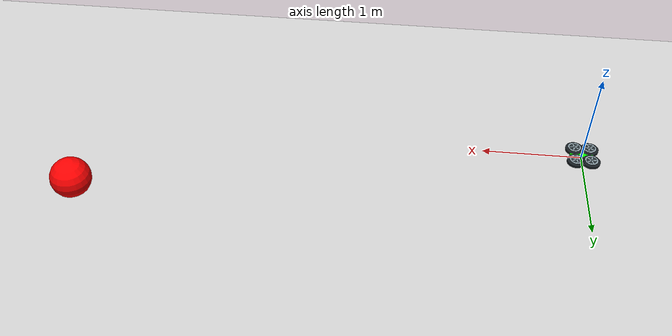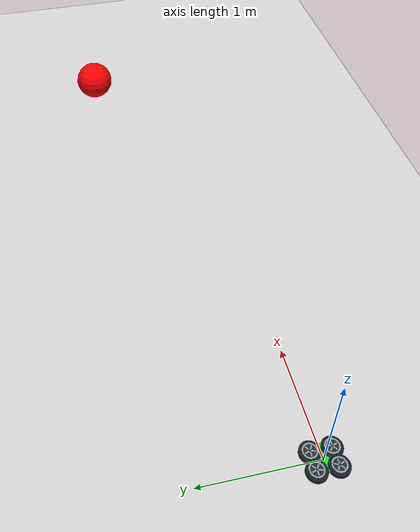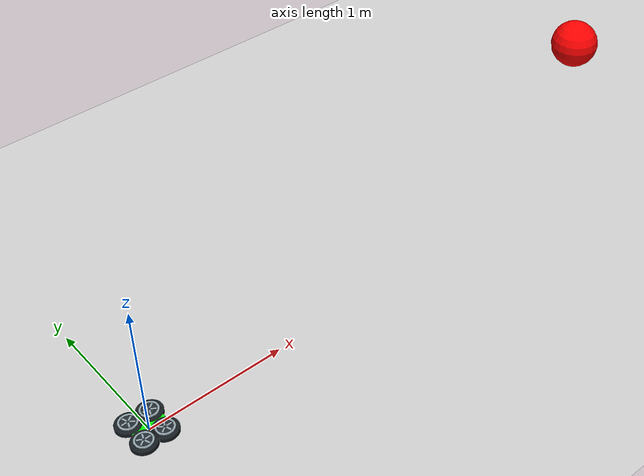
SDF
<?xml version="1.0" ?>
<sdf version="1.8">
  <world name="jetracer_world">
    <physics name="default_physics" type="ode">
      <max_step_size>0.001</max_step_size>
      <real_time_factor>1.0</real_time_factor>
      <real_time_update_rate>1000</real_time_update_rate>
      <solver>
        <type>quick</type>
        <iters>500</iters>
        <precon_iters>50</precon_iters>
        <sor>1.3</sor>
        <use_dynamic_moi_rescaling>true</use_dynamic_moi_rescaling>
      </solver>
      <constraints>
        <cfm>1e-5</cfm>
        <erp>0.8</erp>
      </constraints>
    </physics>
    <plugin
        filename="libignition-gazebo-physics-system.so"
        name="ignition::gazebo::systems::Physics">
        <calculate_inertial>true</calculate_inertial>
    </plugin>
    <plugin
        filename="libignition-gazebo-user-commands-system.so"
        name="ignition::gazebo::systems::UserCommands">
    </plugin>
    <plugin
        filename="libignition-gazebo-scene-broadcaster-system.so"
        name="ignition::gazebo::systems::SceneBroadcaster">
    </plugin>

    <light type="directional" name="sun">
      <cast_shadows>true</cast_shadows>
      <pose>0 0 10 0 0 0</pose>
      <diffuse>0.8 0.8 0.8 1</diffuse>
      <specular>0.2 0.2 0.2 1</specular>
      <attenuation>
        <range>1000</range>
        <constant>0.9</constant>
        <linear>0.01</linear>
        <quadratic>0.001</quadratic>
      </attenuation>
      <direction>-0.5 0.1 -0.9</direction>
    </light>

    <model name="ground_plane">
      <static>true</static>
      <link name="link">
        <collision name="collision">
          <geometry>
            <plane>
              <normal>0 0 1</normal>
            </plane>
          </geometry>
          <surface>
            <friction>
              <ode>
                <mu>10.0</mu>
                <mu2>5.0</mu2>
              </ode>
            </friction>
            <bounce>
              <restitution_coefficient>0.0</restitution_coefficient>
            </bounce>
          </surface>
        </collision>
        <visual name="visual">
          <geometry>
            <plane>
              <normal>0 0 1</normal>
              <size>30 30</size>
            </plane>
          </geometry>
          <material>
            <ambient>0.8 0.8 0.8 1</ambient>
            <diffuse>0.8 0.8 0.8 1</diffuse>
            <specular>0.8 0.8 0.8 1</specular>
          </material>
        </visual>
      </link>
    </model>

    <!-- Sensors -->
    <plugin
        filename="libignition-gazebo-contact-system.so"
        name="ignition::gazebo::systems::Contact">
    </plugin>

    <plugin
        filename="libignition-gazebo-imu-system.so"
        name="ignition::gazebo::systems::Imu">
    </plugin>

    <plugin filename="libignition-gazebo-sensors-system.so"
        name="ignition::gazebo::systems::Sensors">
      <render_engine>ogre2</render_engine>
    </plugin>

    <model name="target_marker">
      <pose>5 1 0.2 0 0 0</pose>
      <link name="link">
          <visual name="visual">
              <geometry>
                  <sphere>
                      <radius>0.2</radius>
                  </sphere>
              </geometry>
              <material>
                  <ambient>1 0 0 1</ambient>
                  <diffuse>1 0 0 1</diffuse>
              </material>
          </visual>
          <collision name="collision">
              <geometry>
                  <sphere>
                      <radius>0.2</radius>
                  </sphere>
              </geometry>
          </collision>
      </link>
    </model>

    <model name="jetracer">
      <pose relative_to="world">0 0 0 0 0 0</pose>
      <self_collide>false</self_collide>
      <static>false</static>

      <frame name="lidar_frame" attached_to="jetracer/Base">
        <pose>0 0 0.08 0 0 0</pose>
      </frame>

      <link name='jetracer/Base'>
        <pose>0 0 0.033 0 0 0</pose>
        <sensor name="imu_sensor" type="imu">
          <always_on>1</always_on>
          <update_rate>1</update_rate>
          <visualize>true</visualize>
          <topic>imu</topic>
        </sensor>

        <sensor name='gpu_lidar' type='gpu_lidar'>
          <pose relative_to='lidar_frame'>0 0 0 0 0 0</pose>
          <topic>lidar</topic>
          <update_rate>10</update_rate>
          <ray>
            <scan>
              <horizontal>
                <samples>120</samples>
                <resolution>1</resolution>
                <min_angle>-1.0472</min_angle>
                <max_angle>1.0472</max_angle>
              </horizontal>
              <vertical>
                <samples>1</samples>
                <resolution>0.01</resolution>
                <min_angle>0</min_angle>
                <max_angle>0</max_angle>
              </vertical>
            </scan>
            <range>
              <min>0.08</min>
              <max>1.5</max>
              <resolution>0.01</resolution>
            </range>
          </ray>
          <alwaysOn>1</alwaysOn>
          <visualize>true</visualize>
        </sensor>

        <inertial>
          <mass>1.329</mass>
        </inertial>
        <collision name='collision'>
          <geometry>
            <box>
              <size>0.23 0.122 0.02</size>
            </box>
          </geometry>
        </collision>
        <visual name='visual'>
          <geometry>
            <box>
              <size>0.23 0.122 0.02</size>
            </box>
          </geometry>
          <material>
            <ambient>0.0 1.0 0.0 1</ambient>
            <diffuse>0.0 1.0 0.0 1</diffuse>
            <specular>0.0 1.0 0.0 1</specular>
          </material>
        </visual>
      </link>
      <link name="jetracer/FrontRightWheel">
        <pose relative_to="jetracer/FrontRightWheelJoint">0 0 0 0 0 0</pose>
        <inertial>
          <mass>.05</mass>
          <inertia>
            <ixx>0.00003331</ixx>
            <ixy>0</ixy>
            <ixz>0</ixz>
            <iyy>0.0000204</iyy>
            <iyz>0</iyz>
            <izz>0.0000204</izz>
          </inertia>
        </inertial>
        <gravity>true</gravity>
        <velocity_decay/>
        <visual name="jetracer/FrontRightWheelVisual">
          <pose>0 0 0 0 0 0</pose>
          <geometry>
            <mesh>
              <uri>meshes/Wheel.dae</uri>
              <scale>0.9041 0.866 0.9041</scale>
            </mesh>
          </geometry>
        </visual>
        <collision name="jetracer/FrontRightWheelCollision">
          <pose>0 .015 0 -1.5707 0 0</pose>
          <geometry>
            <cylinder>
              <length>0.026</length>
              <radius>0.033</radius>
            </cylinder>
          </geometry>
          <surface>
            <friction>
              <ode>
                <mu>0.5</mu>
                <mu2>1.0</mu2>
                <fdir1>0 0 1</fdir1>
              </ode>
            </friction>
          </surface>
        </collision>
      </link>
      <link name="jetracer/FrontRightWheelSteering">
        <pose relative_to="jetracer/FrontRightWheelSteeringJoint">0 0 0 0 0 0</pose>
        <inertial>
          <mass>0.005</mass>
          <inertia>
            <ixx>0.0000018</ixx>
            <iyy>0.0000018</iyy>
            <izz>0.0000018</izz>
          </inertia>
        </inertial>
      </link>
      <link name="jetracer/FrontLeftWheel">
        <pose relative_to="jetracer/FrontLeftWheelJoint">0 0 0 0 0 0</pose>
        <inertial>
          <mass>.05</mass>
          <inertia>
            <ixx>0.00003331</ixx>
            <ixy>0</ixy>
            <ixz>0</ixz>
            <iyy>0.0000204</iyy>
            <iyz>0</iyz>
            <izz>0.0000204</izz>
          </inertia>
        </inertial>
        <gravity>true</gravity>
        <velocity_decay/>
        <visual name="jetracer/FrontLeftWheelVisual">
          <pose>0 0 0 0 0 3.14159</pose>
          <geometry>
            <mesh>
              <uri>meshes/Wheel.dae</uri>
              <scale>0.9041 0.866 0.9041</scale>
            </mesh>
          </geometry>
        </visual>
        <collision name="jetracer/FrontLeftWheelCollision">
          <pose>0 -.015 0 -1.5707 0 0</pose>
          <geometry>
            <cylinder>
              <length>0.026</length>
              <radius>0.033</radius>
            </cylinder>
          </geometry>
          <surface>
            <friction>
              <ode>
                <mu>0.5</mu>
                <mu2>1.0</mu2>
                <fdir1>0 0 1</fdir1>
              </ode>
            </friction>
          </surface>
        </collision>
      </link>
      <link name="jetracer/FrontLeftWheelSteering">
        <pose relative_to="jetracer/FrontLeftWheelSteeringJoint">0 0 0 0 0 0</pose>
        <inertial>
          <mass>0.005</mass>
          <inertia>
            <ixx>0.0000018</ixx>
            <iyy>0.0000018</iyy>
            <izz>0.0000018</izz>
          </inertia>
        </inertial>
      </link>
      <link name="jetracer/RearRightWheel">
        <pose relative_to="jetracer/RearRightWheelJoint">0 0 0 0 0 0</pose>
        <inertial>
          <mass>.05</mass>
          <inertia>
            <ixx>0.00003331</ixx>
            <ixy>0</ixy>
            <ixz>0</ixz>
            <iyy>0.0000204</iyy>
            <iyz>0</iyz>
            <izz>0.0000204</izz>
          </inertia>
        </inertial>
        <gravity>true</gravity>
        <velocity_decay/>
        <visual name="jetracer/RearRightWheelVisual">
          <pose>0 0 0 0 0 0</pose>
          <geometry>
            <mesh>
              <uri>meshes/Wheel.dae</uri>
              <scale>0.9041 0.866 0.9041</scale>
            </mesh>
          </geometry>
        </visual>
        <collision name="jetracer/RearRightWheelCollision">
          <pose>0 .015 0 -1.5707 0 0</pose>
          <geometry>
            <cylinder>
              <length>0.026</length>
              <radius>0.033</radius>
            </cylinder>
          </geometry>
          <surface>
            <friction>
              <ode>
                <mu>0.5</mu>
                <mu2>1.0</mu2>
                <fdir1>0 0 1</fdir1>
              </ode>
            </friction>
          </surface>
        </collision>
      </link>
      <link name="jetracer/RearLeftWheel">
        <pose relative_to="jetracer/RearLeftWheelJoint">0 0 0 0 0 0</pose>
        <inertial>
          <mass>.05</mass>
          <inertia>
            <ixx>0.00003331</ixx>
            <ixy>0</ixy>
            <ixz>0</ixz>
            <iyy>0.0000204</iyy>
            <iyz>0</iyz>
            <izz>0.0000204</izz>
          </inertia>
        </inertial>
        <gravity>true</gravity>
        <velocity_decay/>
        <visual name="jetracer/RearLeftWheelVisual">
          <pose>0 0 0 0 0 3.14159</pose>
          <geometry>
            <mesh>
              <uri>meshes/Wheel.dae</uri>
              <scale>0.9041 0.866 0.9041</scale>
            </mesh>
          </geometry>
        </visual>
        <collision name="jetracer/RearLeftWheelCollision">
          <pose>0 -.015 0 -1.5707 0 0</pose>
          <geometry>
            <cylinder>
              <length>0.026</length>
              <radius>0.033</radius>
            </cylinder>
          </geometry>
          <surface>
            <friction>
              <ode>
                <mu>0.5</mu>
                <mu2>1.0</mu2>
                <fdir1>0 0 1</fdir1>
              </ode>
            </friction>
          </surface>
        </collision>
      </link>
      <joint name="jetracer/FrontRightWheelSteeringJoint" type="revolute">
        <parent>jetracer/Base</parent>
        <child>jetracer/FrontRightWheelSteering</child>
        <pose relative_to="jetracer/Base">.064 -0.089 0 0 0 0</pose>
        <axis>
          <xyz>0 0 1</xyz>
          <limit>
            <lower>-0.6</lower>
            <upper>0.6</upper>
            <velocity>1.0</velocity>
            <effort>25</effort>
          </limit>
          <use_parent_model_frame>1</use_parent_model_frame>
        </axis>
      </joint>
      <joint name="jetracer/FrontRightWheelJoint" type="revolute">
        <parent>jetracer/FrontRightWheelSteering</parent>
        <child>jetracer/FrontRightWheel</child>
        <pose relative_to="jetracer/FrontRightWheelSteeringJoint">0 0 0 0 0 0</pose>
        <axis>
          <xyz>0 1 0</xyz>
          <limit>
            <lower>-1.79769e+308</lower>
            <upper>1.79769e+308</upper>
          </limit>
          <dynamics>
            <spring_reference>0</spring_reference>
            <spring_stiffness>0</spring_stiffness>
          </dynamics>
          <use_parent_model_frame>1</use_parent_model_frame>
        </axis>
      </joint>
      <joint name="jetracer/FrontLeftWheelSteeringJoint" type="revolute">
        <parent>jetracer/Base</parent>
        <child>jetracer/FrontLeftWheelSteering</child>
        <pose relative_to="jetracer/Base">.064 .089 0 0 0 0</pose>
        <axis>
          <xyz>0 0 1</xyz>
          <limit>
            <lower>-0.6</lower>
            <upper>0.6</upper>
            <velocity>1.0</velocity>
            <effort>25</effort>
          </limit>
          <use_parent_model_frame>1</use_parent_model_frame>
        </axis>
      </joint>
      <joint name="jetracer/FrontLeftWheelJoint" type="revolute">
        <parent>jetracer/FrontLeftWheelSteering</parent>
        <child>jetracer/FrontLeftWheel</child>
        <pose relative_to="jetracer/FrontLeftWheelSteeringJoint">0 0 0 0 0 0</pose>
        <axis>
          <xyz>0 1 0</xyz>
          <limit>
            <lower>-1.79769e+308</lower>
            <upper>1.79769e+308</upper>
          </limit>
          <dynamics>
            <spring_reference>0</spring_reference>
            <spring_stiffness>0</spring_stiffness>
          </dynamics>
          <use_parent_model_frame>1</use_parent_model_frame>
        </axis>
      </joint>
      <joint name="jetracer/RearRightWheelJoint" type="revolute">
        <parent>jetracer/Base</parent>
        <child>jetracer/RearRightWheel</child>
        <pose relative_to="jetracer/Base">-0.088 -0.089 0 0 0 0</pose>
        <axis>
          <xyz>0 1 0</xyz>
          <limit>
            <lower>-1.79769e+308</lower>
            <upper>1.79769e+308</upper>
          </limit>
          <dynamics>
            <spring_reference>0</spring_reference>
            <spring_stiffness>0</spring_stiffness>
          </dynamics>
          <use_parent_model_frame>1</use_parent_model_frame>
        </axis>
      </joint>
      <joint name="jetracer/RearLeftWheelJoint" type="revolute">
        <parent>jetracer/Base</parent>
        <child>jetracer/RearLeftWheel</child>
        <pose relative_to="jetracer/Base">-0.088 0.089 0 0 0 0</pose>
        <axis>
          <xyz>0 1 0</xyz>
          <limit>
            <lower>-1.79769e+308</lower>
            <upper>1.79769e+308</upper>
          </limit>
          <dynamics>
            <spring_reference>0</spring_reference>
            <spring_stiffness>0</spring_stiffness>
          </dynamics>
          <use_parent_model_frame>1</use_parent_model_frame>
        </axis>
      </joint>
      <plugin
        filename="ignition-gazebo-ackermann-steering-system"
        name="ignition::gazebo::systems::AckermannSteering">
        <left_joint>jetracer/FrontLeftWheelJoint</left_joint>
        <left_joint>jetracer/RearLeftWheelJoint</left_joint>
        <right_joint>jetracer/FrontRightWheelJoint</right_joint>
        <right_joint>jetracer/FrontRightWheelJoint</right_joint>
        <left_steering_joint>jetracer/FrontLeftWheelSteeringJoint</left_steering_joint>
        <right_steering_joint>jetracer/FrontRightWheelSteeringJoint</right_steering_joint>
        <kingpin_width>.18</kingpin_width>
        <steering_limit>0.5</steering_limit>
        <wheel_base>.2255</wheel_base>
        <wheel_separation>.2</wheel_separation>
        <wheel_radius>0.0365</wheel_radius>
        <min_velocity>-100</min_velocity>
        <max_velocity>100</max_velocity>
        <min_acceleration>-5</min_acceleration>
        <max_acceleration>5</max_acceleration>
        <topic>/cmd_vel</topic>
      </plugin>
    </model>

    <!-- Keyboard: moving forward -->
    <plugin
        filename="libignition-gazebo-triggered-publisher-system.so"
        name="ignition::gazebo::systems::TriggeredPublisher">
      <input type="ignition.msgs.Int32" topic="/keyboard/keypress">
        <match field="data">16777235</match>
      </input>
      <output type="ignition.msgs.Twist" topic="/cmd_vel">
        linear: {x: 0.5}, angular: {z: 0.0}
      </output>
    </plugin>

    <!-- Keyboard: moving backward -->
    <plugin
        filename="libignition-gazebo-triggered-publisher-system.so"
        name="ignition::gazebo::systems::TriggeredPublisher">
      <input type="ignition.msgs.Int32" topic="/keyboard/keypress">
        <match field="data">16777237</match>
      </input>
      <output type="ignition.msgs.Twist" topic="/cmd_vel">
        linear: {x: -0.5}, angular: {z: 0.0}
      </output>
    </plugin>

    <!-- Keyboard: turning left -->
    <plugin
        filename="libignition-gazebo-triggered-publisher-system.so"
        name="ignition::gazebo::systems::TriggeredPublisher">
      <input type="ignition.msgs.Int32" topic="/keyboard/keypress">
        <match field="data">16777234</match>
      </input>
      <output type="ignition.msgs.Twist" topic="/cmd_vel">
        linear: {x: 0.5}, angular: {z: 0.5}
      </output>
    </plugin>

    <!-- Keyboard: turning right -->
    <plugin
        filename="libignition-gazebo-triggered-publisher-system.so"
        name="ignition::gazebo::systems::TriggeredPublisher">
      <input type="ignition.msgs.Int32" topic="/keyboard/keypress">
        <match field="data">16777236</match>
      </input>
      <output type="ignition.msgs.Twist" topic="/cmd_vel">
        linear: {x: 0.5}, angular: {z: -0.5}
      </output>
    </plugin>

    <!-- Keyboard: stop -->
    <plugin
        filename="libignition-gazebo-triggered-publisher-system.so"
        name="ignition::gazebo::systems::TriggeredPublisher">
      <input type="ignition.msgs.Int32" topic="/keyboard/keypress">
        <match field="data">83</match>
      </input>
      <output type="ignition.msgs.Twist" topic="/cmd_vel">
        linear: {x: 0.0}, angular: {z: 0.0}
      </output>
    </plugin>

  </world>
</sdf>
